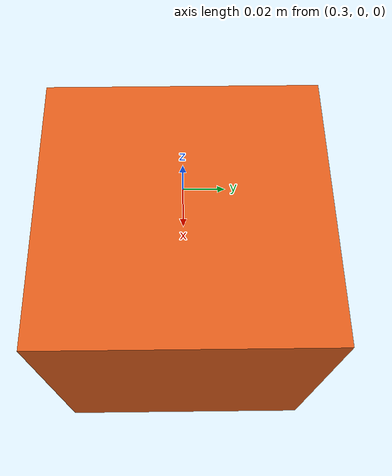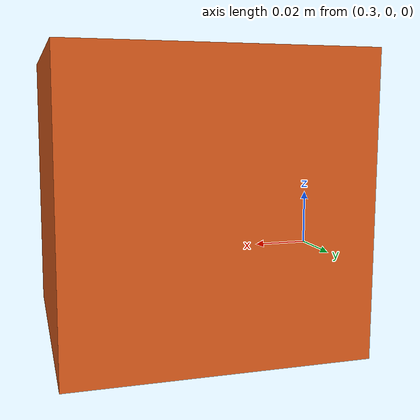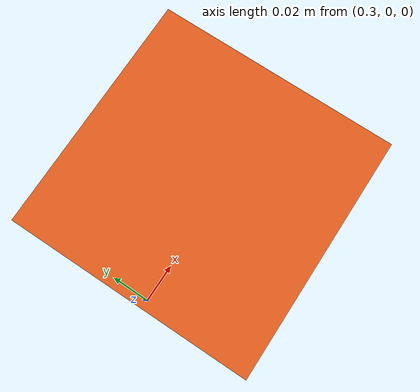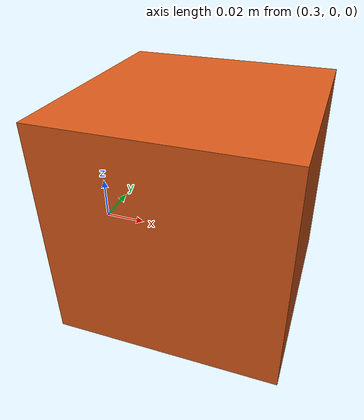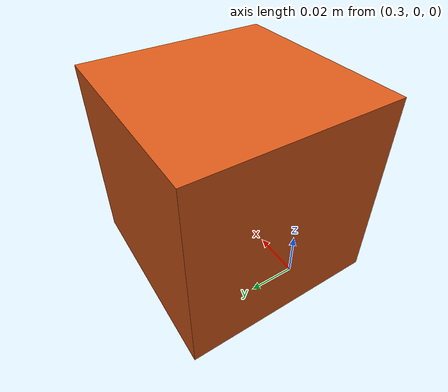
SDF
<?xml version="1.0"?>
<sdf version="1.7">
  <model name="single_obstacle_box">
    <static>true</static>
    <link name="obstacle">
      <pose>0.35 0.0 0.021 0 0 0</pose>
      <visual name="obstacle_visual">
        <geometry><box><size>0.1 0.1 0.1</size></box></geometry>
        <material><diffuse>0.85 0.35 0.1 1.0</diffuse></material>
      </visual>
      <collision name="obstacle_collision">
        <geometry><box><size>0.1 0.1 0.1</size></box></geometry>
      </collision>
    </link>
  </model>
</sdf>
